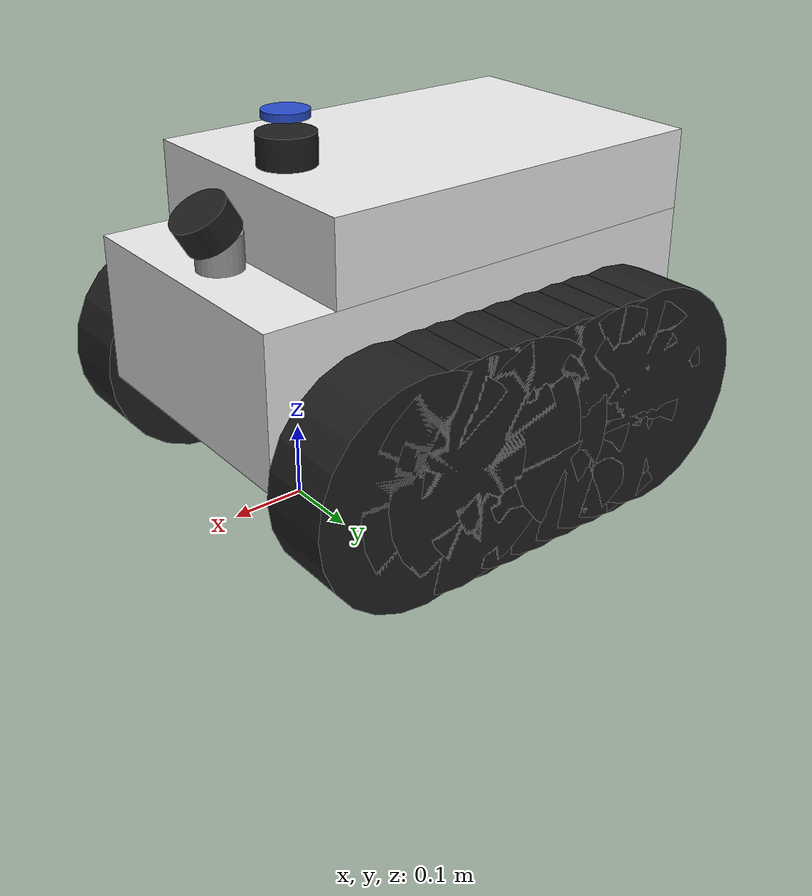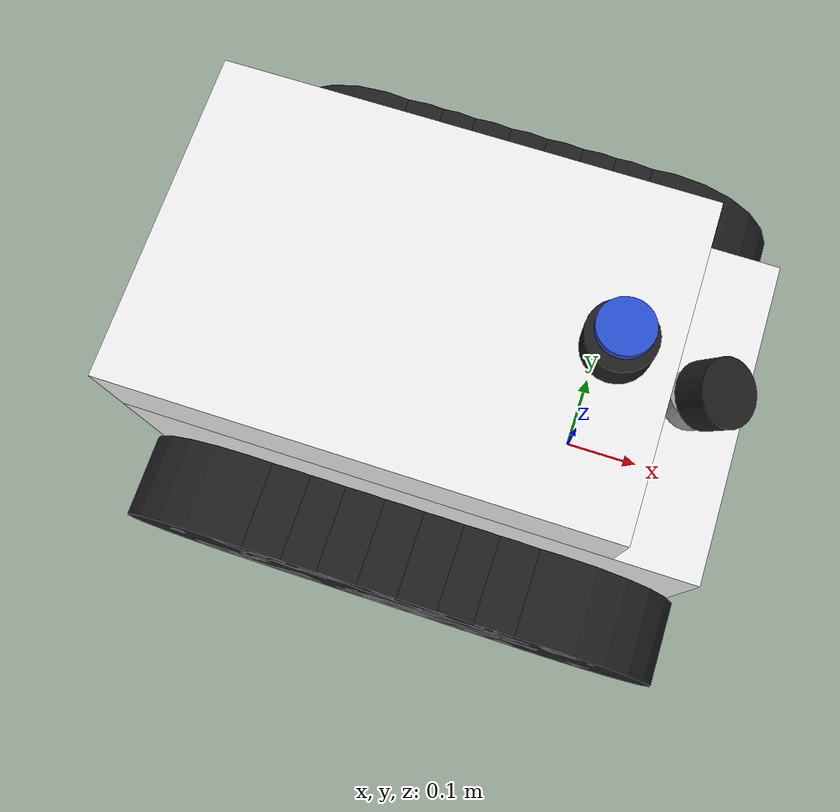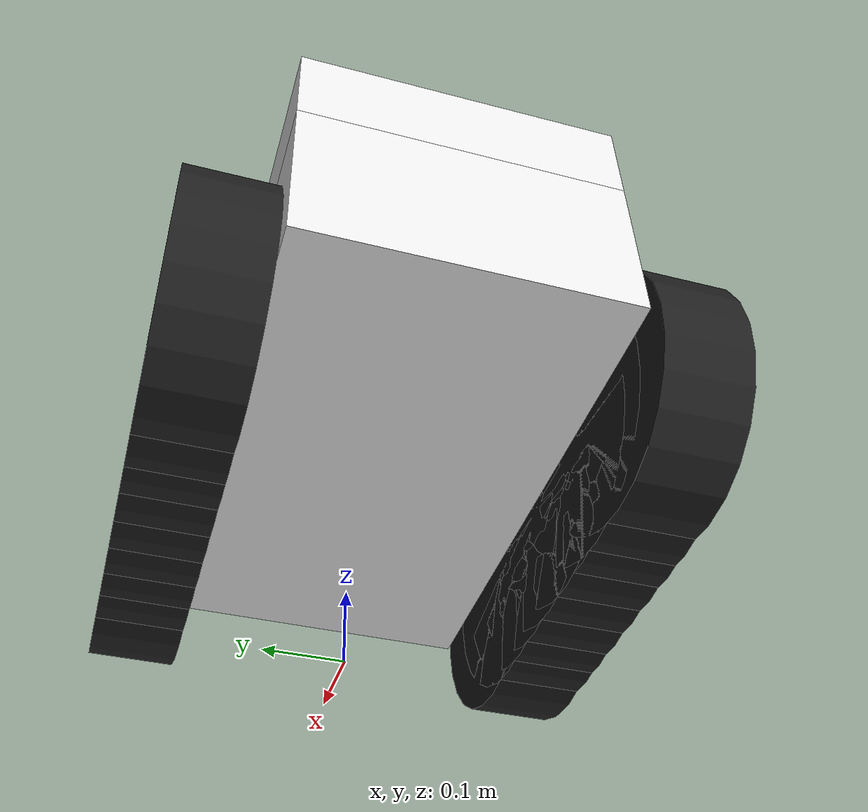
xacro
<?xml version="1.0"?>

<robot name="bunker_mini"
  xmlns:xacro="http://ros.org/wiki/xacro">

    <!-- Define robot constants -->
    <xacro:property name="base_width" value="0.377"/>
    <xacro:property name="base_length" value="0.65475"/>
    <xacro:property name="base_height" value="0.2"/>

    <xacro:property name="wheel_radius" value="0.15" />
    <xacro:property name="wheel_length" value="0.1" />

    <xacro:property name="top_base_width" value="0.377"/>
    <xacro:property name="top_base_length" value="0.56"/>
    <xacro:property name="top_base_height" value="0.1092"/>

    <xacro:property name="tilt_lidar_base_radius" value="0.03" />
    <xacro:property name="tilt_lidar_base_length" value="0.0452" />
    <xacro:property name="base_tilt_lidar_base_x_offset" value="0.267375" />

    <xacro:property name="rplidar_radius" value="0.038" />
    <xacro:property name="rplidar_length" value="0.041" />
    <xacro:property name="rplidar_sensor_height" value="0.031" />

    <xacro:property name="gps_radius" value="0.03" />
    <xacro:property name="gps_length" value="0.01" />
    <xacro:property name="gps_sensor_height" value="0.0635" />

    <xacro:property name="top_base_to_top_sensor_x_offset" value="${(base_length-0.16)-(top_base_length/2)}" />

    <xacro:property name="track_width" value="0.1"/>
    <xacro:property name="track_length" value="${base_length*2/3.5}"/>
    <xacro:property name="track_height" value="${wheel_radius*2}"/>

    <xacro:macro name="wheel_link" params="prefix pos rpy">
        <link name="${prefix}_wheel_${pos}_link">
            <visual>
                <geometry>
                    <cylinder radius="${wheel_radius}" length="${wheel_length}" />
                </geometry>
                <origin xyz="0 0 0" rpy="${pi/2} 0 0" />
                <material name="black" />
            </visual>
            <collision>
                <geometry>
                    <cylinder radius="${wheel_radius}" length="${wheel_length}" />
                </geometry>
                <origin xyz="0 0 0" rpy="${pi/2} 0 0" />
                <surface>
                    <!-- This friction pamareter don't contain reliable data!! -->
                    <friction>
                    <ode>
                        <mu>100000.0</mu>
                        <mu2>100000.0</mu2>
                        <fdir1>0 0 0</fdir1>
                        <slip1>0.0</slip1>
                        <slip2>0.0</slip2>
                    </ode>
                    </friction>
                    <contact>
                    <ode>
                        <soft_cfm>0</soft_cfm>
                        <soft_erp>0.2</soft_erp>
                        <kp>1e+5</kp>
                        <kd>1</kd>
                        <max_vel>0.01</max_vel>
                        <min_depth>0.001</min_depth>
                    </ode>
                    </contact>
                </surface>

                <collide_bitmask>0x10</collide_bitmask>
            </collision>
            <xacro:cylinder_inertia m="15" r="${wheel_radius}" h="${wheel_length}" xyz="0 0 0" rpy="${pi/2} 0 0" />
        </link>
    </xacro:macro>

    <xacro:macro name="wheel_link_f" params="prefix pos rpy">
        <link name="${prefix}_wheel_${pos}_link">
            <visual>
                <geometry>
                    <cylinder radius="${wheel_radius}" length="${wheel_length}" />
                </geometry>
                <origin xyz="0 0 0" rpy="${pi/2} 0 0" />
                <material name="black" />
            </visual>
            <collision>
                <geometry>
                    <cylinder radius="${wheel_radius}" length="${wheel_length}" />
                </geometry>
                <origin xyz="0 0 0" rpy="${pi/2} 0 0" />

                <collide_bitmask>0x10</collide_bitmask>
            </collision>
            <xacro:cylinder_inertia m="15" r="${wheel_radius}" h="${wheel_length}" xyz="0 0 0" rpy="${pi/2} 0 0" />
        </link>
    </xacro:macro>

    <link name="base_footprint" />

    <link name="base_link">
        <visual>
            <geometry>
                <box size="${base_length} ${base_width} ${base_height}" />
            </geometry>
            <origin xyz="0 0 ${base_height/2}" rpy="0 0 0" />
            <material name="white_mono" />
        </visual>
        <collision>
            <geometry>
                <box size="${base_length} ${base_width} ${base_height}" />
            </geometry>
            <origin xyz="0 0 ${base_height/2}" rpy="0 0 0" />
        </collision>
        <xacro:box_inertia m="10" w="${base_width}" d="${base_length}" h="${base_height}" xyz="0 0 ${base_height/2}"/>
    </link>

    <link name="top_base_link">
        <visual>
            <geometry>
                <box size="${top_base_length} ${top_base_width} ${top_base_height}" />
            </geometry>
            <origin xyz="0 0 ${top_base_height/2}" rpy="0 0 0" />
            <material name="white_mono" />
        </visual>
        <collision>
            <geometry>
                <box size="${top_base_length} ${top_base_width} ${top_base_height}" />
            </geometry>
            <origin xyz="0 0 ${top_base_height/2}" rpy="0 0 0" />
        </collision>
    </link>

    <link name="tilt_lidar_base_link">
        <visual>
            <geometry>
                <cylinder radius="${tilt_lidar_base_radius}" length="${tilt_lidar_base_length}" />
            </geometry>
            <origin xyz="0 0 ${tilt_lidar_base_length/2}" rpy="0 0 0" />
            <material name="grey" />
        </visual>
    </link>

    <link name="base_lidar">
        <visual>
            <geometry>
                <cylinder radius="${rplidar_radius}" length="${rplidar_length}" />
            </geometry>
            <origin xyz="0 0 ${rplidar_sensor_height-rplidar_length}" rpy="0 0 0" />
            <material name="black" />
        </visual>
    </link>

    <link name="top_lidar_link">
        <visual>
            <geometry>
                <cylinder radius="${rplidar_radius}" length="${rplidar_length}" />
            </geometry>
            <origin xyz="0 0 ${rplidar_sensor_height-rplidar_length}" rpy="0 0 0" />
            <material name="black" />
        </visual>
    </link>

    <link name="gps_link">
        <visual>
            <geometry>
                <cylinder radius="${gps_radius}" length="${gps_length}" />
            </geometry>
            <origin xyz="0 0 0" rpy="0 0 0" />
            <material name="dark_blue" />
        </visual>

    </link>

    <xacro:wheel_link prefix="right" pos="rear" rpy="0 0 0"/>
    <xacro:wheel_link prefix="left" pos="rear" rpy="0 0 0"  />

    <xacro:wheel_link_f prefix="right" pos="front" rpy="0 0 0"/>
    <xacro:wheel_link_f prefix="left" pos="front" rpy="0 0 0"/>

    <xacro:wheel_link prefix="right" pos="middle" rpy="0 0 0"/>
    <xacro:wheel_link prefix="left" pos="middle" rpy="0 0 0"/>

    <xacro:wheel_link_f prefix="right" pos="front_2" rpy="0 0 0"/>
    <xacro:wheel_link_f prefix="left" pos="front_2" rpy="0 0 0"/>

    <xacro:wheel_link prefix="right" pos="rear_2" rpy="0 0 0"/>
    <xacro:wheel_link prefix="left" pos="rear_2" rpy="0 0 0"/>

    <xacro:wheel_link_f prefix="right" pos="front_4" rpy="0 0 0"/>
    <xacro:wheel_link_f prefix="left" pos="front_4" rpy="0 0 0"/>

    <xacro:wheel_link prefix="right" pos="rear_4" rpy="0 0 0"/>
    <xacro:wheel_link prefix="left" pos="rear_4" rpy="0 0 0"/>

    <xacro:wheel_link_f prefix="right" pos="front_43" rpy="0 0 0"/>
    <xacro:wheel_link_f prefix="left" pos="front_43" rpy="0 0 0"/>

    <xacro:wheel_link prefix="right" pos="rear_43" rpy="0 0 0"/>
    <xacro:wheel_link prefix="left" pos="rear_43" rpy="0 0 0"/>

    <joint name="base_joint" type="fixed">
        <parent link="base_footprint" />
        <child link="base_link" />
        <origin xyz="${-((base_length/2)-0.16)} 0 ${wheel_radius}" rpy="0 0 0" />
    </joint>

    <joint name="base_top_base_joint" type="fixed">
        <parent link="base_link" />
        <child link="top_base_link" />
        <origin xyz="${-(base_length-top_base_length)/2} 0 ${base_height}" rpy="0 0 0" />
    </joint>

    <joint name="base_tilt_lidar_base_joint" type="fixed">
        <parent link="base_link" />
        <child link="tilt_lidar_base_link" />
        <origin xyz="${base_tilt_lidar_base_x_offset} 0 ${base_height}" rpy="0 0 0" />
    </joint>

    <joint name="tilt_lidar_base_tilt_lidar_joint" type="fixed">
        <parent link="base_link" />
        <child link="base_lidar" />
        <origin xyz="${base_tilt_lidar_base_x_offset+rplidar_sensor_height * cos(degrees(60))} 0 ${base_height+tilt_lidar_base_length + rplidar_sensor_height * sin(degrees(60))}" rpy="0 ${radians(30)} 0" />
    </joint>

    <joint name="top_base_top_lidar_joint" type="fixed">
        <parent link="top_base_link" />
        <child link="top_lidar_link" />
        <origin xyz="${top_base_to_top_sensor_x_offset} 0 ${top_base_height + rplidar_sensor_height}" rpy="0 0 0" />
    </joint>

    <joint name="top_base_gps_joint" type="fixed">
        <parent link="top_base_link" />
        <child link="gps_link" />
        <origin xyz="${top_base_to_top_sensor_x_offset} 0 ${top_base_height + gps_sensor_height}" rpy="0 0 0" />
    </joint>

    <joint name="base_right_wheel_rear_joint" type="continuous">
        <parent link="base_link" />
        <child link="right_wheel_rear_link" />
        <origin xyz="${-base_length/3.5} ${-((base_width/2)+(wheel_length/2)+0.006)} 0" rpy="0 0 0" />
        <axis xyz="0 1 0" />
    </joint>

    <joint name="base_left_wheel_rear_joint" type="continuous">
        <parent link="base_link" />
        <child link="left_wheel_rear_link" />
        <origin xyz="${-base_length/3.5} ${((base_width/2)+(wheel_length/2)+0.006)} 0" rpy="0 0 0" />
        <axis xyz="0 1 0" />
    </joint>

    <joint name="base_right_wheel_front_joint" type="continuous">
        <parent link="base_link" />
        <child link="right_wheel_front_link" />
        <origin xyz="${base_length/3.5} ${-((base_width/2)+(wheel_length/2)+0.006)} 0" rpy="0 0 0" />
        <axis xyz="0 1 0" />
    </joint>

    <joint name="base_left_wheel_front_joint" type="continuous">
        <parent link="base_link" />
        <child link="left_wheel_front_link" />
        <origin xyz="${base_length/3.5} ${((base_width/2)+(wheel_length/2)+0.006)} 0" rpy="0 0 0" />
        <axis xyz="0 1 0" />
    </joint>

    <joint name="base_right_wheel_middle_joint" type="continuous">
        <parent link="base_link" />
        <child link="right_wheel_middle_link" />
        <origin xyz="0 ${-((base_width/2)+(wheel_length/2)+0.006)} 0" rpy="0 0 0" />
        <axis xyz="0 1 0" />
    </joint>

    <joint name="base_left_wheel_middle_joint" type="continuous">
        <parent link="base_link" />
        <child link="left_wheel_middle_link" />
        <origin xyz="0 ${((base_width/2)+(wheel_length/2)+0.006)} 0" rpy="0 0 0" />
        <axis xyz="0 1 0" />
    </joint>

    <joint name="base_right_wheel_rear_4_joint" type="continuous">
        <parent link="base_link" />
        <child link="right_wheel_rear_4_link" />
        <origin xyz="${-base_length/14} ${-((base_width/2)+(wheel_length/2)+0.006)} 0" rpy="0 0 0" />
        <axis xyz="0 1 0" />
    </joint>

    <joint name="base_left_wheel_rear_4_joint" type="continuous">
        <parent link="base_link" />
        <child link="left_wheel_rear_4_link" />
        <origin xyz="${-base_length/14} ${((base_width/2)+(wheel_length/2)+0.006)} 0" rpy="0 0 0" />
        <axis xyz="0 1 0" />
    </joint>

    <joint name="base_right_wheel_front_4_joint" type="continuous">
        <parent link="base_link" />
        <child link="right_wheel_front_4_link" />
        <origin xyz="${base_length/14} ${-((base_width/2)+(wheel_length/2)+0.006)} 0" rpy="0 0 0" />
        <axis xyz="0 1 0" />
    </joint>

    <joint name="base_left_wheel_front_4_joint" type="continuous">
        <parent link="base_link" />
        <child link="left_wheel_front_4_link" />
        <origin xyz="${base_length/14} ${((base_width/2)+(wheel_length/2)+0.006)} 0" rpy="0 0 0" />
        <axis xyz="0 1 0" />
    </joint>

    <joint name="base_right_wheel_rear_2_joint" type="continuous">
        <parent link="base_link" />
        <child link="right_wheel_rear_2_link" />
        <origin xyz="${-base_length/7} ${-((base_width/2)+(wheel_length/2)+0.006)} 0" rpy="0 0 0" />
        <axis xyz="0 1 0" />
    </joint>

    <joint name="base_left_wheel_rear_2_joint" type="continuous">
        <parent link="base_link" />
        <child link="left_wheel_rear_2_link" />
        <origin xyz="${-base_length/7} ${((base_width/2)+(wheel_length/2)+0.006)} 0" rpy="0 0 0" />
        <axis xyz="0 1 0" />
    </joint>

    <joint name="base_right_wheel_front_2_joint" type="continuous">
        <parent link="base_link" />
        <child link="right_wheel_front_2_link" />
        <origin xyz="${base_length/7} ${-((base_width/2)+(wheel_length/2)+0.006)} 0" rpy="0 0 0" />
        <axis xyz="0 1 0" />
    </joint>

    <joint name="base_left_wheel_front_2_joint" type="continuous">
        <parent link="base_link" />
        <child link="left_wheel_front_2_link" />
        <origin xyz="${base_length/7} ${((base_width/2)+(wheel_length/2)+0.006)} 0" rpy="0 0 0" />
        <axis xyz="0 1 0" />
    </joint>

    <joint name="base_right_wheel_rear_43_joint" type="continuous">
        <parent link="base_link" />
        <child link="right_wheel_rear_43_link" />
        <origin xyz="${-3*base_length/15} ${-((base_width/2)+(wheel_length/2)+0.006)} 0" rpy="0 0 0" />
        <axis xyz="0 1 0" />
    </joint>

    <joint name="base_left_wheel_rear_43_joint" type="continuous">
        <parent link="base_link" />
        <child link="left_wheel_rear_43_link" />
        <origin xyz="${-3*base_length/15} ${((base_width/2)+(wheel_length/2)+0.006)} 0" rpy="0 0 0" />
        <axis xyz="0 1 0" />
    </joint>

    <joint name="base_right_wheel_front_43_joint" type="continuous">
        <parent link="base_link" />
        <child link="right_wheel_front_43_link" />
        <origin xyz="${3*base_length/15} ${-((base_width/2)+(wheel_length/2)+0.006)} 0" rpy="0 0 0" />
        <axis xyz="0 1 0" />
    </joint>

    <joint name="base_left_wheel_front_43_joint" type="continuous">
        <parent link="base_link" />
        <child link="left_wheel_front_43_link" />
        <origin xyz="${3*base_length/15} ${((base_width/2)+(wheel_length/2)+0.006)} 0" rpy="0 0 0" />
        <axis xyz="0 1 0" />
    </joint>
</robot>
